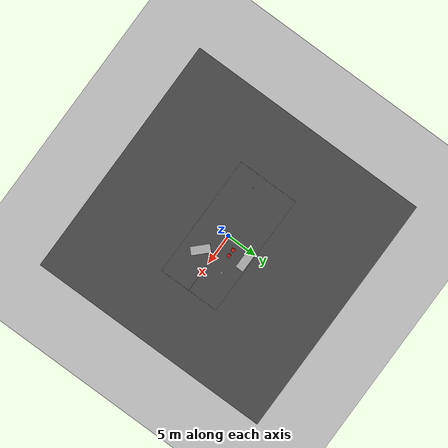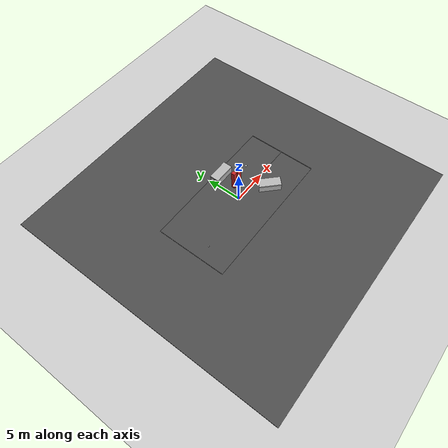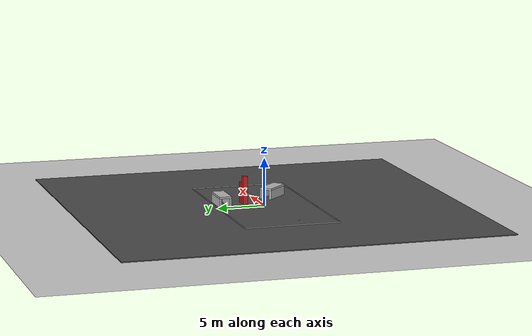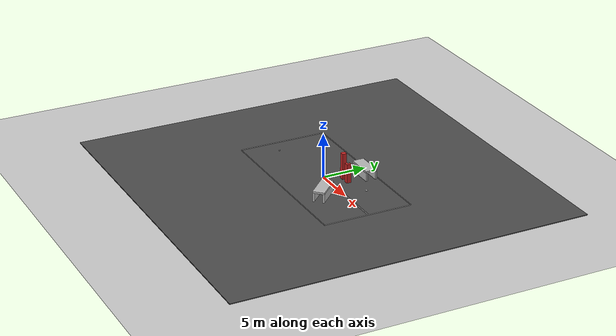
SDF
<sdf version="1.5">
 <world name="default">
  <light name="sun" type="directional">
   <pose>0 0 10 0 -0 0</pose>
   <diffuse>0.8 0.8 0.8 1</diffuse>
   <specular>0.1 0.1 0.1 1</specular>
   <attenuation>
    <range>1000</range>
    <constant>0.9</constant>
    <linear>0.01</linear>
    <quadratic>0.001</quadratic>
   </attenuation>
   <direction>-0.5 0.5 -1</direction>
  </light>
  <model name="ground_plane">
   <static>1</static>
   <link name="link">
    <collision name="collision">
     <geometry><plane><normal>0 0 1</normal><size>100 100</size></plane></geometry>
     <surface><friction><ode><mu>100</mu><mu2>50</mu2></ode></friction></surface>
    </collision>
    <visual name="visual">
     <cast_shadows>0</cast_shadows>
     <geometry><plane><normal>0 0 1</normal><size>100 100</size></plane></geometry>
     <material>
      <script><uri>file://media/materials/scripts/gazebo.material</uri><name>Gazebo/Grey</name></script>
     </material>
    </visual>
   </link>
  </model>
  <physics name="default_physics" default="0" type="ode">
   <gravity>0 0 -9.8066</gravity>
   <ode>
    <solver>
     <type>quick</type>
     <iters>10</iters>
     <sor>1.3</sor>
     <use_dynamic_moi_rescaling>0</use_dynamic_moi_rescaling>
    </solver>
    <constraints>
     <cfm>0</cfm>
     <erp>0.2</erp>
     <contact_max_correcting_vel>100</contact_max_correcting_vel>
     <contact_surface_layer>0.001</contact_surface_layer>
    </constraints>
   </ode>
   <max_step_size>0.004</max_step_size>
   <real_time_factor>1</real_time_factor>
   <real_time_update_rate>250</real_time_update_rate>
   <magnetic_field>6.0e-6 2.3e-5 -4.2e-5</magnetic_field>
  </physics>
  <scene><ambient>0.4 0.4 0.4 1</ambient><background>0.7 0.7 0.7 1</background><shadows>0</shadows></scene>
  <spherical_coordinates>
   <surface_model>EARTH_WGS84</surface_model>
   <latitude_deg>51.9906361</latitude_deg>
   <longitude_deg>4.3767874</longitude_deg>
   <elevation>45.110</elevation>
   <heading_deg>180</heading_deg>
  </spherical_coordinates>
  <include><uri>model://asphalt_2</uri></include>
  <include><uri>model://cage_2</uri></include>
  <include><uri>model://pole_textured</uri><name>pole</name><pose>1.5 1.5 0 0 0 0</pose></include>
  <include><uri>model://pole_textured_low</uri><name>pole_low</name><pose>2.5 1.5 0 0 0 0</pose></include>
  <include><uri>model://barrier</uri><pose>5 0 0 0 0 0</pose></include>
  <include><uri>model://tunnel</uri><name>tunnel1</name><pose>2.5 -1.5 0 0 0 0.785</pose></include>
  <include><uri>model://tunnel</uri><name>tunnel2</name><pose>0.0 3.5 0 0 0 1.5708</pose></include>
  <include><uri>model://roomba</uri><pose>5 2.5 0.1 0 0 0</pose></include>
  <include><uri>model://aruco_box_1</uri><name>aruco_box_1</name><pose>2.19 1.81 2.26 0 0 0</pose></include>
  <include><uri>model://aruco_box_3</uri><pose>-8.0 -1.3 0.11 0 0 0</pose></include>
 </world>
</sdf>

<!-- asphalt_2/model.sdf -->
<sdf version="1.4">
  <model name="asphalt_2">
    <static>true</static>
    <link name="link">
      <collision name="collision">
        <geometry>
          <box>
            <size>40 40 .1</size>
          </box>
        </geometry>
      </collision>
      <visual name="visual">
        <cast_shadows>false</cast_shadows>
        <geometry>
          <box>
            <size>40 40 .1</size>
          </box>
        </geometry>
        <material>
          <script>
            <uri>model://asphalt_2/materials/scripts</uri>
            <uri>model://asphalt_2/materials/textures</uri>
            <name>vrc/asphalt</name>
          </script>
        </material>
      </visual>
    </link>
  </model>
</sdf>

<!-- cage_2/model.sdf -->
<sdf version='1.6'>
  <model name='cage_2'>
    <pose frame=''>0.023125 0.149044 0 0 -0 0</pose>
    <link name='Wall_11'>
      <collision name='Wall_11_Collision'>
        <geometry>
          <box>
            <size>20 0.01 0.1</size>
          </box>
        </geometry>
        <pose frame=''>0 0 0.1 0 -0 0</pose>
      </collision>
      <visual name='Wall_11_Visual'>
        <pose frame=''>0 0 0.1 0 -0 0</pose>
        <geometry>
          <box>
            <size>20 0.01 0.1</size>
          </box>
        </geometry>
	    <material>
		<script>
			<uri>model://cage/materials/scripts</uri>
			<uri>model://cage/materials/textures</uri>
			<name>border</name>
		</script>
	    </material>
        <meta>
          <layer>0</layer>
        </meta>
      </visual>
      <pose frame=''>0 -5 0 0 -0 -3.14158</pose>
    </link>
    <link name='Wall_14'>
      <collision name='Wall_14_Collision'>
        <geometry>
          <box>
            <size>10 0.01 0.1</size>
          </box>
        </geometry>
        <pose frame=''>0 0 0.1 0 -0 0</pose>
      </collision>
      <visual name='Wall_14_Visual'>
        <pose frame=''>0 0 0.1 0 -0 0</pose>
        <geometry>
          <box>
            <size>10 0.01 0.1</size>
          </box>
        </geometry>
	    <material>
		<script>
			<uri>model://cage/materials/scripts</uri>
			<uri>model://cage/materials/textures</uri>
			<name>border</name>
		</script>
	    </material>
        <meta>
          <layer>0</layer>
        </meta>
      </visual>
      <pose frame=''>-10 0 0 0 -0 1.5708</pose>
    </link>
    <link name='Wall_6'>
      <collision name='Wall_6_Collision'>
        <geometry>
          <box>
            <size>20 0.01 0.1</size>
          </box>
        </geometry>
        <pose frame=''>0 0 0.1 0 -0 0</pose>
      </collision>
      <visual name='Wall_6_Visual'>
        <pose frame=''>0 0 0.1 0 -0 0</pose>
        <geometry>
          <box>
            <size>20 0.01 0.1</size>
          </box>
        </geometry>
	    <material>
		<script>
			<uri>model://cage/materials/scripts</uri>
			<uri>model://cage/materials/textures</uri>
			<name>border</name>
		</script>
	    </material>
        <meta>
          <layer>0</layer>
        </meta>
      </visual>
      <pose frame=''>0 5 0 0 -0 0</pose>
    </link>
    <link name='Wall_9'>
      <collision name='Wall_9_Collision'>
        <geometry>
          <box>
            <size>10 0.01 0.1</size>
          </box>
        </geometry>
        <pose frame=''>0 0 0.1 0 -0 0</pose>
      </collision>
      <visual name='Wall_9_Visual'>
        <pose frame=''>0 0 0.1 0 -0 0</pose>
        <geometry>
          <box>
            <size>10 0.01 0.1</size>
          </box>
        </geometry>
	    <material>
		<script>
			<uri>model://cage/materials/scripts</uri>
			<uri>model://cage/materials/textures</uri>
			<name>border</name>
		</script>
	    </material>
        <meta>
          <layer>0</layer>
        </meta>
      </visual>
      <pose frame=''>10 0 0 0 -0 -1.57078</pose>
    </link>
    <static>1</static>
  </model>
</sdf>

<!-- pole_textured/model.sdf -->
<sdf version="1.6">
  <model name="pole_textured">
    <static>true</static>

    <link name="link_pole_textured">
      <pose frame=''>-0.25 0.25 1.50 0 -0 0</pose>
      <collision name="body_collision">
        <geometry>
          <box>
            <size>0.50 0.50 3.00</size>
          </box>
        </geometry>
      </collision>

      <visual name="visual_pole_textured">
	<pose frame=''>0 0 0 0 -0 0</pose>
        <geometry>
          <box>
            <size>0.50 0.50 3.00</size>
          </box>
	</geometry>

	    <material>
		<script>
			<uri>model://pole_textured/materials/scripts</uri>
			<uri>model://pole_textured/materials/textures</uri>
			<name>repeated_pole_textured</name>
		</script>
	    </material>

      </visual>

     </link>
  </model>
</sdf>

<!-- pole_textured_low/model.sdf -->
<sdf version="1.6">
  <model name="pole_textured_low">
    <static>true</static>

    <link name="link_pole_textured_low">
      <pose frame=''>-0.25 0.25 1.1 0 -0 0</pose>
      <collision name="body_collision">
        <geometry>
          <box>
            <size>0.50 0.50 2.2</size>
          </box>
        </geometry>
      </collision>

      <visual name="visual_pole_textured_low">
	<pose frame=''>0 0 0 0 -0 0</pose>
        <geometry>
          <box>
            <size>0.50 0.50 2.2</size>
          </box>
	</geometry>

	    <material>
		<script>
			<uri>model://pole_textured_low/materials/scripts</uri>
			<uri>model://pole_textured_low/materials/textures</uri>
			<name>repeated_pole_textured_low</name>
		</script>
	    </material>

      </visual>

     </link>
  </model>
</sdf>

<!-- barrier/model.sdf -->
<sdf version='1.6'>
  <model name='barrier'>
    <link name='barrier_link'>
      <pose frame=''>0 0 0.1 0 -0 0</pose>
      <collision name='barrier_collision'>
        <geometry>
          <box>
            <size>10 0.05 0.2</size>
          </box>
        </geometry>
      </collision>
      <visual name='barrier_visual'>
        <pose frame=''>0 0 0 0 -0 0</pose>
        <geometry>
          <box>
            <size>10 0.05 0.2</size>
          </box>
        </geometry>
	    <material>
		<script>
			<uri>model://barrier/materials/scripts</uri>
			<uri>model://barrier/materials/textures</uri>
			<name>barrier</name>
		</script>
	    </material>
        <meta>
          <layer>0</layer>
        </meta>
      </visual>
    </link>
    <static>1</static>
  </model>
</sdf>

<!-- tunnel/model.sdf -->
<sdf version="1.6">
  <model name="tunnel">
    <static>true</static>

    <link name="tunnel_left">
      <pose frame=''>0.1 -1.5 0.50 0 -0 0</pose>
      <collision name="collision_left">
        <geometry>
          <box>
            <size>0.2 3.0 1.0</size>
          </box>
        </geometry>
      </collision>

      <visual name="visual_left">
	<pose frame=''>0 0 0 0 -0 0</pose>
        <geometry>
          <box>
            <size>0.2 3.0 1.0</size>
          </box>
	</geometry>

	    <material>
		<script>
			<uri>model://tunnel/materials/scripts</uri>
			<uri>model://tunnel/materials/textures</uri>
			<name>tunnel</name>
		</script>
	    </material>

      </visual>

    </link>

    <link name="tunnel_right">
      <pose frame=''>1.2 -1.5 0.5 0 -0 0</pose>
      <collision name="collision_right">
        <geometry>
          <box>
            <size>0.2 3.0 1.0</size>
          </box>
        </geometry>
      </collision>

      <visual name="visual_right">
	<pose frame=''>0 0 0 0 -0 0</pose>
        <geometry>
          <box>
            <size>0.2 3.0 1.0</size>
          </box>
	</geometry>

	    <material>
		<script>
			<uri>model://tunnel/materials/scripts</uri>
			<uri>model://tunnel/materials/textures</uri>
			<name>tunnel</name>
		</script>
	    </material>

      </visual>

    </link>

    <link name="tunnel_top">
      <pose frame=''>0.65 -1.5 1.1 0 -0 0</pose>
      <collision name="collision_top">
        <geometry>
          <box>
            <size>1.3 3.0 0.2</size>
          </box>
        </geometry>
      </collision>

      <visual name="visual_top">
	<pose frame=''>0 0 0 0 -0 0</pose>
        <geometry>
          <box>
            <size>1.3 3.0 0.2</size>
          </box>
	</geometry>

	    <material>
		<script>
			<uri>model://tunnel/materials/scripts</uri>
			<uri>model://tunnel/materials/textures</uri>
			<name>tunnel</name>
		</script>
	    </material>
      </visual>
    </link>

  </model>
</sdf>

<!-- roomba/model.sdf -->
<sdf version='1.5'>
  <model name='roomba'>

    <link name='marker'>
        <inertial>
          <pose>0 0 0 0 0 0</pose>
          <mass>1</mass>
          <inertia>
            <ixx>1</ixx>
            <ixy>0.0</ixy>
            <ixz>0.0</ixz>
            <iyy>1</iyy>
            <iyz>0.0</iyz>
            <izz>1</izz>
          </inertia>
        </inertial>

      <pose frame=''>0 0 0 0 0 0</pose>
      <visual name='visual'>
        <geometry>
          <box>
            <size>0.19 0.19 0.01</size>
          </box>
        </geometry>
        <material>
          <script>
            <uri>model://aruco_visual_marker_21/materials/scripts</uri>
            <uri>model://aruco_visual_marker_21/materials/textures</uri>
            <name>ArucoVisualMarker21/Marker</name>
          </script>
          <ambient>1 1 1 1</ambient>
          <diffuse>1 1 1 1</diffuse>
          <specular>0 0 0 1</specular>
          <emissive>1 1 1 0</emissive>
          <shader type='vertex'>
            <normal_map>__default__</normal_map>
          </shader>
        </material>
        <pose frame=''>0 0 0 0 -0 0</pose>
        <cast_shadows>1</cast_shadows>
        <transparency>0</transparency>
      </visual>
      <collision name='collision'>
        <laser_retro>0</laser_retro>
        <max_contacts>10</max_contacts>
        <pose frame=''>0 0 0 0 -0 0</pose>
        <geometry>
          <box>
            <size>0.1778 0.1778 1e-05</size>
          </box>
        </geometry>
      </collision>
    </link>

    <link name='marker_pad'>
        <inertial>
          <pose>0 0 0 0 0 0</pose>
          <mass>1</mass>
          <inertia>
            <ixx>1</ixx>
            <ixy>0.0</ixy>
            <ixz>0.0</ixz>
            <iyy>1</iyy>
            <iyz>0.0</iyz>
            <izz>1</izz>
          </inertia>
        </inertial>
      <pose frame='marker'>0 0 -1e-5 0 -0 0</pose>
      <visual name='visual'>
        <geometry>
          <box>
            <size>0.28 0.23 1e-3</size>
          </box>
        </geometry>
        <material>
          <lighting>1</lighting>
          <script>
            <uri>file://media/materials/scripts/gazebo.material</uri>
            <name>Gazebo/White</name>
          </script>
          <shader type='vertex'>
            <normal_map>__default__</normal_map>
          </shader>
        </material>
        <cast_shadows>1</cast_shadows>
        <transparency>0</transparency>
      </visual>
    </link>

    <joint name='marker_JOINT_marker_pad' type='revolute'>
      <parent>marker</parent>
      <child>marker_pad</child>
      <pose frame=''>0 0 0 0 -0 0</pose>
      <axis>
        <xyz>0 0 1</xyz>
        <limit>
          <upper>0</upper>
          <lower>0</lower>
        </limit>
	<dynamics>
	  <spring_reference>0.1</spring_reference>
	  <spring_stiffness>2</spring_stiffness>
	  <friction>0.5</friction>
	  <damping>1</damping>
	</dynamics>
      </axis>
    </joint>

    <!-- link for written rewards for landing pads -->

    <link name='rewards'>
        <inertial>
          <pose>0 0 0 0 0 0</pose>
          <mass>1</mass>
          <inertia>
            <ixx>1</ixx>
            <ixy>0.0</ixy>
            <ixz>0.0</ixz>
            <iyy>1</iyy>
            <iyz>0.0</iyz>
            <izz>1</izz>
          </inertia>
        </inertial>

      <pose frame=''>-0.12 0 1e-5 1.5708 0 1.5708</pose>
      <visual name='visual'>
        <geometry>
          <box>
            <size>0.19 1e-3 0.03</size>
          </box>
        </geometry>
        <material>
          <script>
            <uri>model://roomba/materials/scripts</uri>
            <uri>model://roomba/materials/textures</uri>
            <name>Rewards</name>
          </script>
          <ambient>1 1 1 1</ambient>
          <diffuse>1 1 1 1</diffuse>
          <specular>0 0 0 1</specular>
          <emissive>1 1 1 0</emissive>
          <shader type='vertex'>
            <normal_map>__default__</normal_map>
          </shader>
        </material>
        <pose frame=''>0 0 0 0 -0 0</pose>
        <cast_shadows>1</cast_shadows>
        <transparency>0</transparency>
      </visual>
    </link>

    <joint name='marker_pad_JOINT_rewards' type='revolute'>
      <parent>marker_pad</parent>
      <child>rewards</child>
      <pose frame=''>0 0 0 0 -0 0</pose>
      <axis>
        <xyz>0 0 1</xyz>
        <limit>
          <upper>0</upper>
          <lower>0</lower>
        </limit>
	<dynamics>
	  <spring_reference>0.1</spring_reference>
	  <spring_stiffness>2</spring_stiffness>
	  <friction>0.5</friction>
	  <damping>1</damping>
	</dynamics>
      </axis>
    </joint>

   <plugin filename="libgazebo_ros_p3d.so" name="marker_groundtruth_sim">
     <updateRate>50.0</updateRate>
    <bodyName>marker</bodyName>
    <topicName>/roomba/ground_truth</topicName>
    <gaussianNoise>0.0</gaussianNoise>
    <frameName>map</frameName>
   </plugin>

    <plugin name="object_controller" filename="libgazebo_ros_planar_move.so">
      <commandTopic>/roomba/cmd_vel</commandTopic>
      <odometryTopic>/roomba/odom</odometryTopic>
      <odometryFrame>odom_roomba</odometryFrame>
      <odometryRate>50.0</odometryRate>
      <robotBaseFrame>marker_pad</robotBaseFrame>
    </plugin>

  </model>
</sdf>

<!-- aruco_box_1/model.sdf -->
<sdf version="1.5">

 <model name='aruco_box_1'>
      <pose>0 0 0 0 -0 0</pose>
      <link name='link'>
        <inertial>
          <mass>1</mass>
          <inertia>
            <ixx>0.166667</ixx>
            <ixy>0</ixy>
            <ixz>0</ixz>
            <iyy>0.166667</iyy>
            <iyz>0</iyz>
            <izz>0.166667</izz>
          </inertia>
          <pose>0 0 0 0 -0 0</pose>
        </inertial>
        <collision name='collision'>
          <geometry>
            <box>
              <size>0.12 0.12 0.12</size>
            </box>
          </geometry>
          <surface>
            <contact>
              <ode/>
            </contact>
            <bounce/>
            <friction>
              <torsional>
                <ode/>
              </torsional>
              <ode/>
            </friction>
          </surface>
          <max_contacts>10</max_contacts>
        </collision>
        <visual name='aruco_box_mesh'>
          <geometry>
            <mesh>
                <uri>model://aruco_box_1/model.dae</uri>
                <scale>0.06 0.06 0.06</scale>
            </mesh>
          </geometry>
        </visual>
        <self_collide>0</self_collide>
        <enable_wind>0</enable_wind>
        <kinematic>0</kinematic>
      </link>
    </model>
    </sdf>

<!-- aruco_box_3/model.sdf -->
<sdf version="1.5">

 <model name='aruco_box_3'>
      <pose>0 0 0 0 -0 0</pose>
      <link name='link'>
        <inertial>
          <mass>1</mass>
          <inertia>
            <ixx>0.166667</ixx>
            <ixy>0</ixy>
            <ixz>0</ixz>
            <iyy>0.166667</iyy>
            <iyz>0</iyz>
            <izz>0.166667</izz>
          </inertia>
          <pose>0 0 0 0 -0 0</pose>
        </inertial>
        <collision name='collision'>
          <geometry>
            <box>
              <size>0.12 0.12 0.12</size>
            </box>
          </geometry>
          <surface>
            <contact>
              <ode/>
            </contact>
            <bounce/>
            <friction>
              <torsional>
                <ode/>
              </torsional>
              <ode/>
            </friction>
          </surface>
          <max_contacts>10</max_contacts>
        </collision>
        <visual name='aruco_box_mesh'>
          <geometry>
            <mesh>
                <uri>model://aruco_box_3/model.dae</uri>
                <scale>0.06 0.06 0.06</scale>
            </mesh>
          </geometry>
        </visual>
        <self_collide>0</self_collide>
        <enable_wind>0</enable_wind>
        <kinematic>0</kinematic>
      </link>
    </model>
    </sdf>
